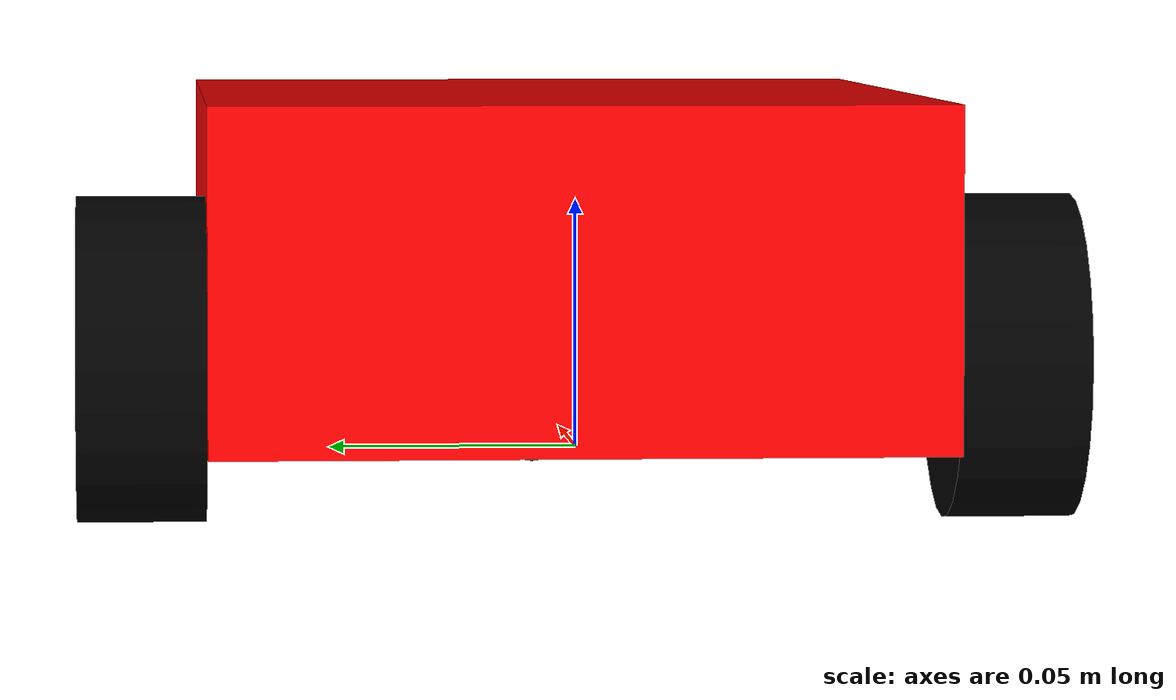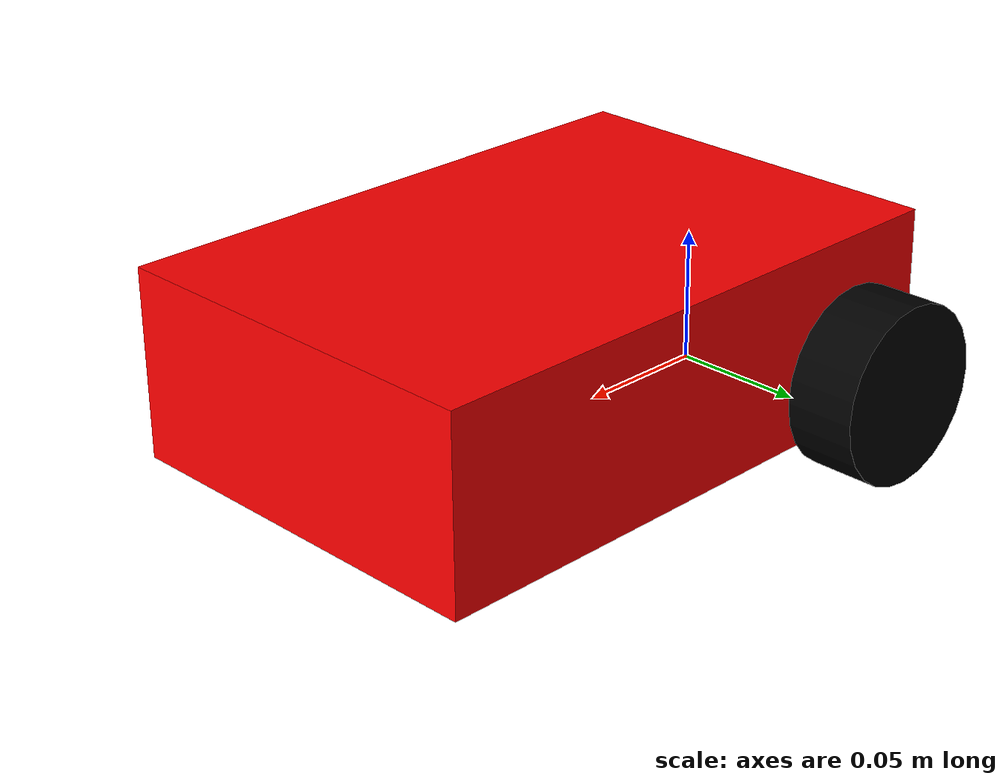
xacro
<?xml version="1.0"?>
<robot xmlns:xacro="http://www.ros.org/wiki/xacro">

    <xacro:include filename="materials.xacro" />
    <xacro:include filename="constants.xacro" />
    <xacro:include filename="inertial_properties.xacro" />

    <!-- BASE LINK -->

    <link name="base_link">

    </link>

    <!-- BASE FOOTPRINT LINK AND JOINT -->

    <joint name="base_footprint_joint" type="fixed">
        <parent link="base_link"/>
        <child link="base_footprint"/>
        <origin xyz="0.0 0.0 0.0" rpy="0.0 0.0 0.0"/>
    </joint>

    <link name="base_footprint"></link>

    <!-- ROBOT JOINT (BASE LINK - ROBOT'S FRAME) -->

    <joint name="robot_joint" type="fixed">
        <parent link="base_link"/>
        <child link="robot_link"/>
        <origin xyz="${-radius_wheel} 0.0  0.0"/>
    </joint>

    <!-- ROBOT LINK (ROBOT'S FRAME) -->

    <link name="robot_link">
        <visual>
            <origin xyz="${robot_size_x / 2} 0.0 ${robot_size_z / 2}"/>
            <geometry>
                <box size="${robot_size_x} ${robot_size_y} ${robot_size_z}"/>
            </geometry>
            <material name="red"/>
        </visual>
        <collision>
            <origin xyz="${robot_size_x / 2} 0.0 ${robot_size_z / 2}"/>
            <geometry>
                <box size="${robot_size_x} ${robot_size_y} ${robot_size_z}"/>
            </geometry>
        </collision>
        <xacro:box_inertia m="2.0" w="${robot_size_x}" d="${robot_size_y}" h="${robot_size_z}"/>
    </link>

    <!-- LEFT WHEEL JOINT-->

    <joint name="left_wheel_joint" type="continuous">
        <parent link="base_link"/>
        <child link="left_wheel_link"/>
        <origin xyz="0.0 ${robot_size_y / 2 + height_wheel / 2} ${radius_wheel - idler_wheel_radius}" rpy="${-pi / 2} 0.0 0.0"/>
        <axis xyz="0.0 0.0 1.0"/>
    </joint>

    <!-- LEFT WHEEL LINK -->

    <link name="left_wheel_link">
        <visual>
            <geometry>
                <cylinder radius="${radius_wheel}" length="${height_wheel}"/>
            </geometry>
            <material name="black"/>
        </visual>
        <collision>
            <geometry>
                <cylinder radius="${radius_wheel}" length="${height_wheel}"/>
            </geometry>
        </collision>
        <xacro:cylinder_inertia m="1.0" r="${radius_wheel}" h="${height_wheel}"/>
    </link>

    <!-- RIGHT WHEEL JOINT-->
    <joint name="right_wheel_joint" type="continuous">
        <parent link="base_link"/>
        <child link="right_wheel_link"/>
        <origin xyz="0.0 ${-robot_size_y / 2 - height_wheel / 2} ${radius_wheel - idler_wheel_radius}" rpy="${-pi / 2} 0.0 0.0"/>
        <axis xyz="0.0 0.0 1.0"/>
    </joint>

    <!-- RIGHT WHEEL LINK -->

    <link name="right_wheel_link">
        <visual>
            <geometry>
                <cylinder radius="${radius_wheel}" length="${height_wheel}"/>
            </geometry>
            <material name="black"/>
        </visual>
        <collision>
            <geometry>
                <cylinder radius="${radius_wheel}" length="${height_wheel}"/>
            </geometry>
            <material name="black"/>
        </collision>
        <xacro:cylinder_inertia m="1.0" r="${radius_wheel}" h="${height_wheel}"/>
    </link>

    <!-- IDLER WHEEL JOINT -->

    <joint name="idler_wheel_joint" type="fixed">
        <parent link="robot_link"/>
        <child link="idler_wheel_link"/>
        <origin xyz="${robot_size_x - 0.05} 0.0 0.0"/>
    </joint>

    <!-- IDLER WHEEL LINK -->

    <link name="idler_wheel_link">
        <visual>
            <geometry>
                <sphere radius="${idler_wheel_radius}"/>
            </geometry>
            <material name="black"/>
        </visual>
        <collision>
            <geometry>
                <sphere radius="${idler_wheel_radius}"/>
            </geometry>
            <material name="black"/>
        </collision>
        <xacro:sphere_inertia m="0.05" r="${idler_wheel_radius}"/>
    </link>

    <gazebo reference="idler_wheel_link">
        <mu1 value="0.001"/>
        <mu2 value="0.001"/>
    </gazebo>

    <!-- Fricción para ruedas principales - CRÍTICO para evitar deslizamiento -->
    <gazebo reference="left_wheel_link">
        <mu1 value="1.5"/>
        <mu2 value="1.5"/>
        <kp value="100000.0"/>
        <kd value="10.0"/>
        <minDepth value="0.01"/>
        <maxVel value="1.0"/>
        <fdir1 value="1 0 0"/>
    </gazebo>

    <gazebo reference="right_wheel_link">
        <mu1 value="1.5"/>
        <mu2 value="1.5"/>
        <kp value="100000.0"/>
        <kd value="10.0"/>
        <minDepth value="0.01"/>
        <maxVel value="1.0"/>
        <fdir1 value="1 0 0"/>
    </gazebo>

</robot>

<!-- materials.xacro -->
<robot xmlns:xacro="http://www.ros.org/wiki/xacro">

    <!-- COLORS FOR ROBOT VISUALIZATION IN SIMULATION -->

    <material name="red">
        <color rgba="1.0 0.0 0.0 1.0"/>
    </material>

    <material name="green">
        <color rgba="0.0 1.0 0.0 1.0"/>
    </material>

    <material name="white">
        <color rgba="1.0 1.0 1.0 1.0"/>
    </material>

    <material name="blue">
        <color rgba="0.0 0.0 1.0 1.0"/>
    </material>

    <material name="black">
        <color rgba="0.0 0.0 0.0 1.0"/>
    </material>

</robot>

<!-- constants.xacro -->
<robot xmlns:xacro="http://www.ros.org/wiki/xacro">

    <!-- CONSTANT DEFNITIONS -->

    <xacro:property name="robot_size_x" value="0.22"/>
    <xacro:property name="robot_size_y" value="0.15"/>
    <xacro:property name="robot_size_z" value="0.07"/>

    <xacro:property name="radius_wheel" value="0.033" />
    <xacro:property name="height_wheel" value="0.026" />

    <xacro:property name="idler_wheel_radius" value="0.015" />

</robot>

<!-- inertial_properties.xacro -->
<robot xmlns:xacro="http://www.ros.org/wiki/xacro">

    <!-- DEFINE INERTIAL PROPERTIES FOR THE COMPONENTS OF THE ROBOT (https://docs.nav2.org/setup_guides/urdf/setup_urdf.html) -->
    <xacro:macro name="box_inertia" params="m w h d">
    <inertial>
        <origin xyz="${robot_size_x / 2} 0.0 ${robot_size_z / 2}" rpy="0.0 0.0 0.0"/>
        <mass value="${m}"/>
        <inertia ixx="${(m/12) * (h*h + d*d)}" ixy="0.0" ixz="0.0" iyy="${(m/12) * (w*w + d*d)}" iyz="0.0" izz="${(m/12) * (w*w + h*h)}"/>
    </inertial>
    </xacro:macro>

    <xacro:macro name="cylinder_inertia" params="m r h">
    <inertial>
        <origin xyz="0.0 0.0 0.0" rpy="0.0 0.0 0.0"/>
        <mass value="${m}"/>
        <inertia ixx="${(m/12) * (3*r*r + h*h)}" ixy = "0" ixz = "0" iyy="${(m/12) * (3*r*r + h*h)}" iyz = "0" izz="${(m/2) * (r*r)}"/>
    </inertial>
    </xacro:macro>

    <xacro:macro name="sphere_inertia" params="m r">
    <inertial>
        <origin xyz="0.0 0.0 0.0" rpy="0.0 0.0 0.0"/>
        <mass value="${m}"/>
        <inertia ixx="${(2/5) * m * (r*r)}" ixy="0.0" ixz="0.0" iyy="${(2/5) * m * (r*r)}" iyz="0.0" izz="${(2/5) * m * (r*r)}"/>
    </inertial>
    </xacro:macro>

</robot>
